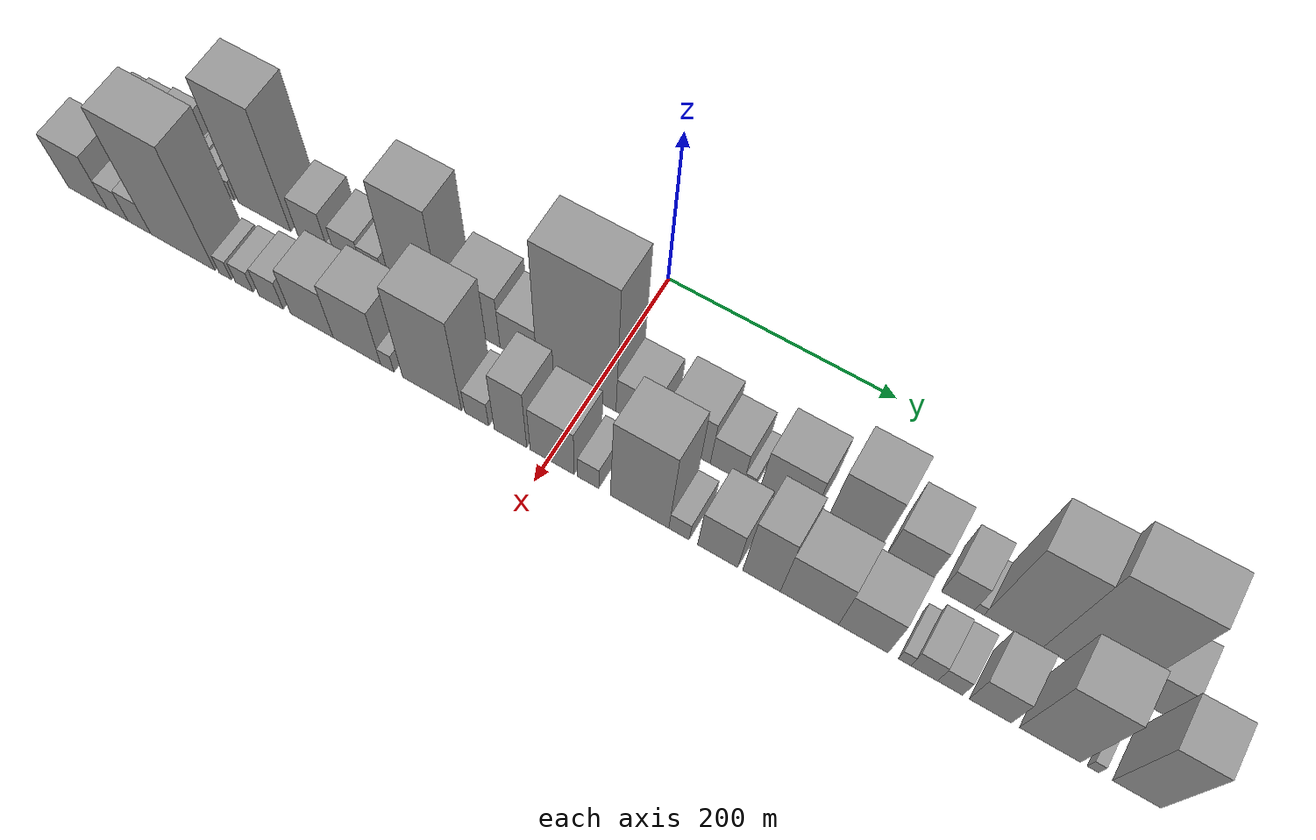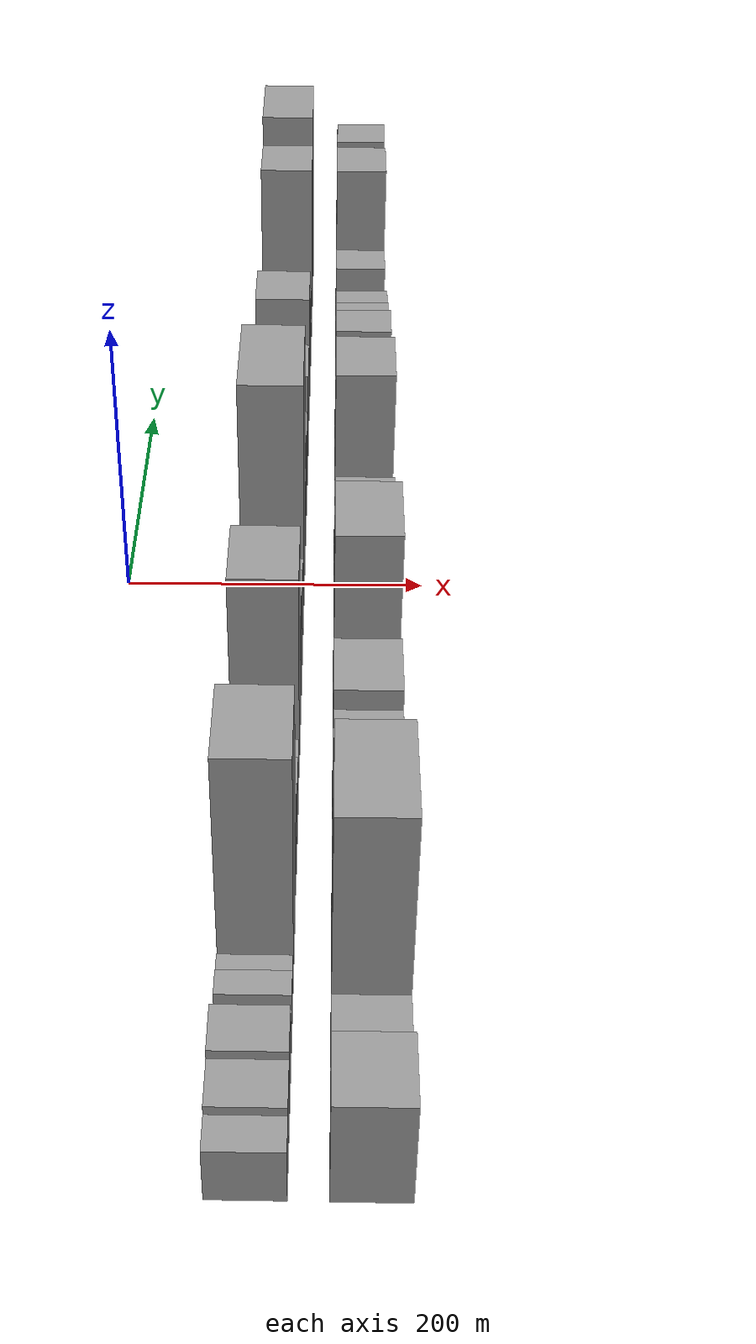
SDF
<sdf version="1.6">
 <world name="default">
  <scene>
   <sky><clouds><speed>12</speed></clouds></sky>
   <ambient>0.4 0.4 0.4 1</ambient>
   <background>0.7 0.7 0.7 1</background>
   <shadows>1</shadows>
  </scene>
  <gravity>0 0 -9.8066</gravity>
  <magnetic_field>6e-06 2.3e-05 -4.2e-05</magnetic_field>
  <physics default="0" name="default_physics" type="ode">
   <ode>
    <solver>
     <type>quick</type>
     <iters>10</iters>
     <sor>1.0</sor>
     <use_dynamic_moi_rescaling>0</use_dynamic_moi_rescaling>
    </solver>
    <constraints>
     <cfm>0</cfm>
     <erp>0.2</erp>
     <contact_max_correcting_vel>100</contact_max_correcting_vel>
     <contact_surface_layer>0.001</contact_surface_layer>
    </constraints>
   </ode>
   <max_step_size>0.004</max_step_size>
   <real_time_factor>1</real_time_factor>
   <real_time_update_rate>250</real_time_update_rate>
  </physics>
  <light name="sun" type="directional">
   <pose>0 0 10 0 0 0</pose>
   <diffuse>0.8 0.8 0.8 1</diffuse>
   <specular>0.2 0.2 0.2 1</specular>
   <attenuation>
    <range>1000</range>
    <constant>0.9</constant>
    <linear>0.01</linear>
    <quadratic>0.001</quadratic>
   </attenuation>
   <direction>-0.5 0.1 -0.9</direction>
  </light>
  <model name="building_1">
   <static>1</static>
   <pose>100.0000 -450.2089 0 0.000000 0.000000 0.000000</pose>
   <link name="link">
    <pose>0 0 19.50 0 0 0</pose>
    <collision name="collision"><geometry><box><size>40.0000 19.5823 39.0000</size></box></geometry></collision>
    <visual name="visual">
     <cast_shadows>0</cast_shadows>
     <geometry><box><size>40.0000 19.5823 39.0000</size></box></geometry>
     <material>
      <script>
       <uri>model://grey_wall/materials/scripts</uri>
       <uri>model://grey_wall/materials/textures</uri>
       <name>vrc/grey_wall</name>
      </script>
     </material>
    </visual>
   </link>
  </model>
  <model name="building_2">
   <static>1</static>
   <pose>100.0000 -427.1291 0 0.000000 0.000000 0.000000</pose>
   <link name="link">
    <pose>0 0 22.50 0 0 0</pose>
    <collision name="collision"><geometry><box><size>40.0000 26.5774 45.0000</size></box></geometry></collision>
    <visual name="visual">
     <cast_shadows>0</cast_shadows>
     <geometry><box><size>40.0000 26.5774 45.0000</size></box></geometry>
     <material>
      <script>
       <uri>model://grey_wall/materials/scripts</uri>
       <uri>model://grey_wall/materials/textures</uri>
       <name>vrc/grey_wall</name>
      </script>
     </material>
    </visual>
   </link>
  </model>
  <model name="building_3">
   <static>1</static>
   <pose>100.0000 -400.4056 0 0.000000 0.000000 0.000000</pose>
   <link name="link">
    <pose>0 0 25.50 0 0 0</pose>
    <collision name="collision"><geometry><box><size>40.0000 26.8695 51.0000</size></box></geometry></collision>
    <visual name="visual">
     <cast_shadows>0</cast_shadows>
     <geometry><box><size>40.0000 26.8695 51.0000</size></box></geometry>
     <material>
      <script>
       <uri>model://grey_wall/materials/scripts</uri>
       <uri>model://grey_wall/materials/textures</uri>
       <name>vrc/grey_wall</name>
      </script>
     </material>
    </visual>
   </link>
  </model>
  <model name="building_4">
   <static>1</static>
   <pose>100.0000 -383.9242 0 0.000000 0.000000 0.000000</pose>
   <link name="link">
    <pose>0 0 7.50 0 0 0</pose>
    <collision name="collision"><geometry><box><size>40.0000 6.0933 15.0000</size></box></geometry></collision>
    <visual name="visual">
     <cast_shadows>0</cast_shadows>
     <geometry><box><size>40.0000 6.0933 15.0000</size></box></geometry>
     <material>
      <script>
       <uri>model://grey_wall/materials/scripts</uri>
       <uri>model://grey_wall/materials/textures</uri>
       <name>vrc/grey_wall</name>
      </script>
     </material>
    </visual>
   </link>
  </model>
  <model name="building_5">
   <static>1</static>
   <pose>100.0000 -376.5319 0 0.000000 0.000000 0.000000</pose>
   <link name="link">
    <pose>0 0 10.50 0 0 0</pose>
    <collision name="collision"><geometry><box><size>40.0000 8.6912 21.0000</size></box></geometry></collision>
    <visual name="visual">
     <cast_shadows>0</cast_shadows>
     <geometry><box><size>40.0000 8.6912 21.0000</size></box></geometry>
     <material>
      <script>
       <uri>model://grey_wall/materials/scripts</uri>
       <uri>model://grey_wall/materials/textures</uri>
       <name>vrc/grey_wall</name>
      </script>
     </material>
    </visual>
   </link>
  </model>
  <model name="building_6">
   <static>1</static>
   <pose>100.0000 -368.5084 0 0.000000 0.000000 0.000000</pose>
   <link name="link">
    <pose>0 0 9.00 0 0 0</pose>
    <collision name="collision"><geometry><box><size>40.0000 7.3557 18.0000</size></box></geometry></collision>
    <visual name="visual">
     <cast_shadows>0</cast_shadows>
     <geometry><box><size>40.0000 7.3557 18.0000</size></box></geometry>
     <material>
      <script>
       <uri>model://grey_wall/materials/scripts</uri>
       <uri>model://grey_wall/materials/textures</uri>
       <name>vrc/grey_wall</name>
      </script>
     </material>
    </visual>
   </link>
  </model>
  <model name="building_7">
   <static>1</static>
   <pose>100.0000 -357.0182 0 0.000000 0.000000 0.000000</pose>
   <link name="link">
    <pose>0 0 15.00 0 0 0</pose>
    <collision name="collision"><geometry><box><size>40.0000 15.6246 30.0000</size></box></geometry></collision>
    <visual name="visual">
     <cast_shadows>0</cast_shadows>
     <geometry><box><size>40.0000 15.6246 30.0000</size></box></geometry>
     <material>
      <script>
       <uri>model://grey_wall/materials/scripts</uri>
       <uri>model://grey_wall/materials/textures</uri>
       <name>vrc/grey_wall</name>
      </script>
     </material>
    </visual>
   </link>
  </model>
  <model name="building_8">
   <static>1</static>
   <pose>100.0000 -343.0800 0 0.000000 0.000000 0.000000</pose>
   <link name="link">
    <pose>0 0 13.50 0 0 0</pose>
    <collision name="collision"><geometry><box><size>40.0000 12.2518 27.0000</size></box></geometry></collision>
    <visual name="visual">
     <cast_shadows>0</cast_shadows>
     <geometry><box><size>40.0000 12.2518 27.0000</size></box></geometry>
     <material>
      <script>
       <uri>model://grey_wall/materials/scripts</uri>
       <uri>model://grey_wall/materials/textures</uri>
       <name>vrc/grey_wall</name>
      </script>
     </material>
    </visual>
   </link>
  </model>
  <model name="building_9">
   <static>1</static>
   <pose>100.0000 -306.8563 0 0.000000 0.000000 0.000000</pose>
   <link name="link">
    <pose>0 0 82.50 0 0 0</pose>
    <collision name="collision"><geometry><box><size>40.0000 52.1956 165.0000</size></box></geometry></collision>
    <visual name="visual">
     <cast_shadows>0</cast_shadows>
     <geometry><box><size>40.0000 52.1956 165.0000</size></box></geometry>
     <material>
      <script>
       <uri>model://grey_wall/materials/scripts</uri>
       <uri>model://grey_wall/materials/textures</uri>
       <name>vrc/grey_wall</name>
      </script>
     </material>
    </visual>
   </link>
  </model>
  <model name="building_10">
   <static>1</static>
   <pose>100.0000 -258.7649 0 0.000000 0.000000 0.000000</pose>
   <link name="link">
    <pose>0 0 28.50 0 0 0</pose>
    <collision name="collision"><geometry><box><size>40.0000 29.9873 57.0000</size></box></geometry></collision>
    <visual name="visual">
     <cast_shadows>0</cast_shadows>
     <geometry><box><size>40.0000 29.9873 57.0000</size></box></geometry>
     <material>
      <script>
       <uri>model://grey_wall/materials/scripts</uri>
       <uri>model://grey_wall/materials/textures</uri>
       <name>vrc/grey_wall</name>
      </script>
     </material>
    </visual>
   </link>
  </model>
  <model name="building_11">
   <static>1</static>
   <pose>100.0000 -240.4747 0 0.000000 0.000000 0.000000</pose>
   <link name="link">
    <pose>0 0 7.50 0 0 0</pose>
    <collision name="collision"><geometry><box><size>40.0000 6.5930 15.0000</size></box></geometry></collision>
    <visual name="visual">
     <cast_shadows>0</cast_shadows>
     <geometry><box><size>40.0000 6.5930 15.0000</size></box></geometry>
     <material>
      <script>
       <uri>model://grey_wall/materials/scripts</uri>
       <uri>model://grey_wall/materials/textures</uri>
       <name>vrc/grey_wall</name>
      </script>
     </material>
    </visual>
   </link>
  </model>
  <model name="building_12">
   <static>1</static>
   <pose>100.0000 -224.1074 0 0.000000 0.000000 0.000000</pose>
   <link name="link">
    <pose>0 0 22.50 0 0 0</pose>
    <collision name="collision"><geometry><box><size>40.0000 26.1418 45.0000</size></box></geometry></collision>
    <visual name="visual">
     <cast_shadows>0</cast_shadows>
     <geometry><box><size>40.0000 26.1418 45.0000</size></box></geometry>
     <material>
      <script>
       <uri>model://grey_wall/materials/scripts</uri>
       <uri>model://grey_wall/materials/textures</uri>
       <name>vrc/grey_wall</name>
      </script>
     </material>
    </visual>
   </link>
  </model>
  <model name="building_13">
   <static>1</static>
   <pose>100.0000 -200.5109 0 0.000000 0.000000 0.000000</pose>
   <link name="link">
    <pose>0 0 19.50 0 0 0</pose>
    <collision name="collision"><geometry><box><size>40.0000 21.0513 39.0000</size></box></geometry></collision>
    <visual name="visual">
     <cast_shadows>0</cast_shadows>
     <geometry><box><size>40.0000 21.0513 39.0000</size></box></geometry>
     <material>
      <script>
       <uri>model://grey_wall/materials/scripts</uri>
       <uri>model://grey_wall/materials/textures</uri>
       <name>vrc/grey_wall</name>
      </script>
     </material>
    </visual>
   </link>
  </model>
  <model name="building_14">
   <static>1</static>
   <pose>100.0000 -158.6587 0 0.000000 0.000000 0.000000</pose>
   <link name="link">
    <pose>0 0 76.50 0 0 0</pose>
    <collision name="collision"><geometry><box><size>40.0000 48.6531 153.0000</size></box></geometry></collision>
    <visual name="visual">
     <cast_shadows>0</cast_shadows>
     <geometry><box><size>40.0000 48.6531 153.0000</size></box></geometry>
     <material>
      <script>
       <uri>model://grey_wall/materials/scripts</uri>
       <uri>model://grey_wall/materials/textures</uri>
       <name>vrc/grey_wall</name>
      </script>
     </material>
    </visual>
   </link>
  </model>
  <model name="building_15">
   <static>1</static>
   <pose>100.0000 -103.3141 0 0.000000 0.000000 0.000000</pose>
   <link name="link">
    <pose>0 0 39.00 0 0 0</pose>
    <collision name="collision"><geometry><box><size>40.0000 44.0360 78.0000</size></box></geometry></collision>
    <visual name="visual">
     <cast_shadows>0</cast_shadows>
     <geometry><box><size>40.0000 44.0360 78.0000</size></box></geometry>
     <material>
      <script>
       <uri>model://grey_wall/materials/scripts</uri>
       <uri>model://grey_wall/materials/textures</uri>
       <name>vrc/grey_wall</name>
      </script>
     </material>
    </visual>
   </link>
  </model>
  <model name="building_16">
   <static>1</static>
   <pose>100.0000 -64.5007 0 0.000000 0.000000 0.000000</pose>
   <link name="link">
    <pose>0 0 30.00 0 0 0</pose>
    <collision name="collision"><geometry><box><size>40.0000 33.5907 60.0000</size></box></geometry></collision>
    <visual name="visual">
     <cast_shadows>0</cast_shadows>
     <geometry><box><size>40.0000 33.5907 60.0000</size></box></geometry>
     <material>
      <script>
       <uri>model://grey_wall/materials/scripts</uri>
       <uri>model://grey_wall/materials/textures</uri>
       <name>vrc/grey_wall</name>
      </script>
     </material>
    </visual>
   </link>
  </model>
  <model name="building_17">
   <static>1</static>
   <pose>100.0000 -12.4729 0 0.000000 0.000000 0.000000</pose>
   <link name="link">
    <pose>0 0 96.00 0 0 0</pose>
    <collision name="collision"><geometry><box><size>40.0000 70.4649 192.0000</size></box></geometry></collision>
    <visual name="visual">
     <cast_shadows>0</cast_shadows>
     <geometry><box><size>40.0000 70.4649 192.0000</size></box></geometry>
     <material>
      <script>
       <uri>model://grey_wall/materials/scripts</uri>
       <uri>model://grey_wall/materials/textures</uri>
       <name>vrc/grey_wall</name>
      </script>
     </material>
    </visual>
   </link>
  </model>
  <model name="building_18">
   <static>1</static>
   <pose>100.0000 39.6269 0 0.000000 0.000000 0.000000</pose>
   <link name="link">
    <pose>0 0 28.50 0 0 0</pose>
    <collision name="collision"><geometry><box><size>40.0000 33.7347 57.0000</size></box></geometry></collision>
    <visual name="visual">
     <cast_shadows>0</cast_shadows>
     <geometry><box><size>40.0000 33.7347 57.0000</size></box></geometry>
     <material>
      <script>
       <uri>model://grey_wall/materials/scripts</uri>
       <uri>model://grey_wall/materials/textures</uri>
       <name>vrc/grey_wall</name>
      </script>
     </material>
    </visual>
   </link>
  </model>
  <model name="building_19">
   <static>1</static>
   <pose>100.0000 84.9731 0 0.000000 0.000000 0.000000</pose>
   <link name="link">
    <pose>0 0 36.00 0 0 0</pose>
    <collision name="collision"><geometry><box><size>40.0000 38.9576 72.0000</size></box></geometry></collision>
    <visual name="visual">
     <cast_shadows>0</cast_shadows>
     <geometry><box><size>40.0000 38.9576 72.0000</size></box></geometry>
     <material>
      <script>
       <uri>model://grey_wall/materials/scripts</uri>
       <uri>model://grey_wall/materials/textures</uri>
       <name>vrc/grey_wall</name>
      </script>
     </material>
    </visual>
   </link>
  </model>
  <model name="building_20">
   <static>1</static>
   <pose>100.0000 118.7665 0 0.000000 0.000000 0.000000</pose>
   <link name="link">
    <pose>0 0 25.50 0 0 0</pose>
    <collision name="collision"><geometry><box><size>40.0000 28.6294 51.0000</size></box></geometry></collision>
    <visual name="visual">
     <cast_shadows>0</cast_shadows>
     <geometry><box><size>40.0000 28.6294 51.0000</size></box></geometry>
     <material>
      <script>
       <uri>model://grey_wall/materials/scripts</uri>
       <uri>model://grey_wall/materials/textures</uri>
       <name>vrc/grey_wall</name>
      </script>
     </material>
    </visual>
   </link>
  </model>
  <model name="building_21">
   <static>1</static>
   <pose>100.0000 137.5628 0 0.000000 0.000000 0.000000</pose>
   <link name="link">
    <pose>0 0 9.00 0 0 0</pose>
    <collision name="collision"><geometry><box><size>40.0000 8.9632 18.0000</size></box></geometry></collision>
    <visual name="visual">
     <cast_shadows>0</cast_shadows>
     <geometry><box><size>40.0000 8.9632 18.0000</size></box></geometry>
     <material>
      <script>
       <uri>model://grey_wall/materials/scripts</uri>
       <uri>model://grey_wall/materials/textures</uri>
       <name>vrc/grey_wall</name>
      </script>
     </material>
    </visual>
   </link>
  </model>
  <model name="building_22">
   <static>1</static>
   <pose>100.0000 167.8590 0 0.000000 0.000000 0.000000</pose>
   <link name="link">
    <pose>0 0 37.50 0 0 0</pose>
    <collision name="collision"><geometry><box><size>40.0000 43.6292 75.0000</size></box></geometry></collision>
    <visual name="visual">
     <cast_shadows>0</cast_shadows>
     <geometry><box><size>40.0000 43.6292 75.0000</size></box></geometry>
     <material>
      <script>
       <uri>model://grey_wall/materials/scripts</uri>
       <uri>model://grey_wall/materials/textures</uri>
       <name>vrc/grey_wall</name>
      </script>
     </material>
    </visual>
   </link>
  </model>
  <model name="building_23">
   <static>1</static>
   <pose>100.0000 221.0656 0 0.000000 0.000000 0.000000</pose>
   <link name="link">
    <pose>0 0 54.00 0 0 0</pose>
    <collision name="collision"><geometry><box><size>40.0000 42.7839 108.0000</size></box></geometry></collision>
    <visual name="visual">
     <cast_shadows>0</cast_shadows>
     <geometry><box><size>40.0000 42.7839 108.0000</size></box></geometry>
     <material>
      <script>
       <uri>model://grey_wall/materials/scripts</uri>
       <uri>model://grey_wall/materials/textures</uri>
       <name>vrc/grey_wall</name>
      </script>
     </material>
    </visual>
   </link>
  </model>
  <model name="building_24">
   <static>1</static>
   <pose>100.0000 266.4537 0 0.000000 0.000000 0.000000</pose>
   <link name="link">
    <pose>0 0 34.50 0 0 0</pose>
    <collision name="collision"><geometry><box><size>40.0000 35.9923 69.0000</size></box></geometry></collision>
    <visual name="visual">
     <cast_shadows>0</cast_shadows>
     <geometry><box><size>40.0000 35.9923 69.0000</size></box></geometry>
     <material>
      <script>
       <uri>model://grey_wall/materials/scripts</uri>
       <uri>model://grey_wall/materials/textures</uri>
       <name>vrc/grey_wall</name>
      </script>
     </material>
    </visual>
   </link>
  </model>
  <model name="building_25">
   <static>1</static>
   <pose>100.0000 307.6019 0 0.000000 0.000000 0.000000</pose>
   <link name="link">
    <pose>0 0 24.00 0 0 0</pose>
    <collision name="collision"><geometry><box><size>40.0000 26.3041 48.0000</size></box></geometry></collision>
    <visual name="visual">
     <cast_shadows>0</cast_shadows>
     <geometry><box><size>40.0000 26.3041 48.0000</size></box></geometry>
     <material>
      <script>
       <uri>model://grey_wall/materials/scripts</uri>
       <uri>model://grey_wall/materials/textures</uri>
       <name>vrc/grey_wall</name>
      </script>
     </material>
    </visual>
   </link>
  </model>
  <model name="building_26">
   <static>1</static>
   <pose>100.0000 324.3262 0 0.000000 0.000000 0.000000</pose>
   <link name="link">
    <pose>0 0 7.50 0 0 0</pose>
    <collision name="collision"><geometry><box><size>40.0000 7.1446 15.0000</size></box></geometry></collision>
    <visual name="visual">
     <cast_shadows>0</cast_shadows>
     <geometry><box><size>40.0000 7.1446 15.0000</size></box></geometry>
     <material>
      <script>
       <uri>model://grey_wall/materials/scripts</uri>
       <uri>model://grey_wall/materials/textures</uri>
       <name>vrc/grey_wall</name>
      </script>
     </material>
    </visual>
   </link>
  </model>
  <model name="building_27">
   <static>1</static>
   <pose>100.0000 350.5982 0 0.000000 0.000000 0.000000</pose>
   <link name="link">
    <pose>0 0 75.00 0 0 0</pose>
    <collision name="collision"><geometry><box><size>40.0000 45.3994 150.0000</size></box></geometry></collision>
    <visual name="visual">
     <cast_shadows>0</cast_shadows>
     <geometry><box><size>40.0000 45.3994 150.0000</size></box></geometry>
     <material>
      <script>
       <uri>model://grey_wall/materials/scripts</uri>
       <uri>model://grey_wall/materials/textures</uri>
       <name>vrc/grey_wall</name>
      </script>
     </material>
    </visual>
   </link>
  </model>
  <model name="building_28">
   <static>1</static>
   <pose>100.0000 404.5768 0 0.000000 0.000000 0.000000</pose>
   <link name="link">
    <pose>0 0 87.00 0 0 0</pose>
    <collision name="collision"><geometry><box><size>40.0000 62.5577 174.0000</size></box></geometry></collision>
    <visual name="visual">
     <cast_shadows>0</cast_shadows>
     <geometry><box><size>40.0000 62.5577 174.0000</size></box></geometry>
     <material>
      <script>
       <uri>model://grey_wall/materials/scripts</uri>
       <uri>model://grey_wall/materials/textures</uri>
       <name>vrc/grey_wall</name>
      </script>
     </material>
    </visual>
   </link>
  </model>
  <model name="building_29">
   <static>1</static>
   <pose>100.0000 451.2607 0 0.000000 0.000000 0.000000</pose>
   <link name="link">
    <pose>0 0 30.00 0 0 0</pose>
    <collision name="collision"><geometry><box><size>40.0000 30.8100 60.0000</size></box></geometry></collision>
    <visual name="visual">
     <cast_shadows>0</cast_shadows>
     <geometry><box><size>40.0000 30.8100 60.0000</size></box></geometry>
     <material>
      <script>
       <uri>model://grey_wall/materials/scripts</uri>
       <uri>model://grey_wall/materials/textures</uri>
       <name>vrc/grey_wall</name>
      </script>
     </material>
    </visual>
   </link>
  </model>
  <model name="building_30">
   <static>1</static>
   <pose>160.0000 -439.6438 0 0.000000 0.000000 0.000000</pose>
   <link name="link">
    <pose>0 0 37.50 0 0 0</pose>
    <collision name="collision"><geometry><box><size>40.0000 40.7124 75.0000</size></box></geometry></collision>
    <visual name="visual">
     <cast_shadows>0</cast_shadows>
     <geometry><box><size>40.0000 40.7124 75.0000</size></box></geometry>
     <material>
      <script>
       <uri>model://grey_wall/materials/scripts</uri>
       <uri>model://grey_wall/materials/textures</uri>
       <name>vrc/grey_wall</name>
      </script>
     </material>
    </visual>
   </link>
  </model>
  <model name="building_31">
   <static>1</static>
   <pose>160.0000 -408.7538 0 0.000000 0.000000 0.000000</pose>
   <link name="link">
    <pose>0 0 21.00 0 0 0</pose>
    <collision name="collision"><geometry><box><size>40.0000 21.0678 42.0000</size></box></geometry></collision>
    <visual name="visual">
     <cast_shadows>0</cast_shadows>
     <geometry><box><size>40.0000 21.0678 42.0000</size></box></geometry>
     <material>
      <script>
       <uri>model://grey_wall/materials/scripts</uri>
       <uri>model://grey_wall/materials/textures</uri>
       <name>vrc/grey_wall</name>
      </script>
     </material>
    </visual>
   </link>
  </model>
  <model name="building_32">
   <static>1</static>
   <pose>160.0000 -386.7330 0 0.000000 0.000000 0.000000</pose>
   <link name="link">
    <pose>0 0 22.50 0 0 0</pose>
    <collision name="collision"><geometry><box><size>40.0000 22.9737 45.0000</size></box></geometry></collision>
    <visual name="visual">
     <cast_shadows>0</cast_shadows>
     <geometry><box><size>40.0000 22.9737 45.0000</size></box></geometry>
     <material>
      <script>
       <uri>model://grey_wall/materials/scripts</uri>
       <uri>model://grey_wall/materials/textures</uri>
       <name>vrc/grey_wall</name>
      </script>
     </material>
    </visual>
   </link>
  </model>
  <model name="building_33">
   <static>1</static>
   <pose>160.0000 -343.1132 0 0.000000 0.000000 0.000000</pose>
   <link name="link">
    <pose>0 0 85.50 0 0 0</pose>
    <collision name="collision"><geometry><box><size>40.0000 64.2659 171.0000</size></box></geometry></collision>
    <visual name="visual">
     <cast_shadows>0</cast_shadows>
     <geometry><box><size>40.0000 64.2659 171.0000</size></box></geometry>
     <material>
      <script>
       <uri>model://grey_wall/materials/scripts</uri>
       <uri>model://grey_wall/materials/textures</uri>
       <name>vrc/grey_wall</name>
      </script>
     </material>
    </visual>
   </link>
  </model>
  <model name="building_34">
   <static>1</static>
   <pose>160.0000 -300.8660 0 0.000000 0.000000 0.000000</pose>
   <link name="link">
    <pose>0 0 13.50 0 0 0</pose>
    <collision name="collision"><geometry><box><size>40.0000 12.2286 27.0000</size></box></geometry></collision>
    <visual name="visual">
     <cast_shadows>0</cast_shadows>
     <geometry><box><size>40.0000 12.2286 27.0000</size></box></geometry>
     <material>
      <script>
       <uri>model://grey_wall/materials/scripts</uri>
       <uri>model://grey_wall/materials/textures</uri>
       <name>vrc/grey_wall</name>
      </script>
     </material>
    </visual>
   </link>
  </model>
  <model name="building_35">
   <static>1</static>
   <pose>160.0000 -282.1672 0 0.000000 0.000000 0.000000</pose>
   <link name="link">
    <pose>0 0 15.00 0 0 0</pose>
    <collision name="collision"><geometry><box><size>40.0000 17.1689 30.0000</size></box></geometry></collision>
    <visual name="visual">
     <cast_shadows>0</cast_shadows>
     <geometry><box><size>40.0000 17.1689 30.0000</size></box></geometry>
     <material>
      <script>
       <uri>model://grey_wall/materials/scripts</uri>
       <uri>model://grey_wall/materials/textures</uri>
       <name>vrc/grey_wall</name>
      </script>
     </material>
    </visual>
   </link>
  </model>
  <model name="building_36">
   <static>1</static>
   <pose>160.0000 -255.9202 0 0.000000 0.000000 0.000000</pose>
   <link name="link">
    <pose>0 0 21.00 0 0 0</pose>
    <collision name="collision"><geometry><box><size>40.0000 23.3251 42.0000</size></box></geometry></collision>
    <visual name="visual">
     <cast_shadows>0</cast_shadows>
     <geometry><box><size>40.0000 23.3251 42.0000</size></box></geometry>
     <material>
      <script>
       <uri>model://grey_wall/materials/scripts</uri>
       <uri>model://grey_wall/materials/textures</uri>
       <name>vrc/grey_wall</name>
      </script>
     </material>
    </visual>
   </link>
  </model>
  <model name="building_37">
   <static>1</static>
   <pose>160.0000 -216.8334 0 0.000000 0.000000 0.000000</pose>
   <link name="link">
    <pose>0 0 34.50 0 0 0</pose>
    <collision name="collision"><geometry><box><size>40.0000 40.8485 69.0000</size></box></geometry></collision>
    <visual name="visual">
     <cast_shadows>0</cast_shadows>
     <geometry><box><size>40.0000 40.8485 69.0000</size></box></geometry>
     <material>
      <script>
       <uri>model://grey_wall/materials/scripts</uri>
       <uri>model://grey_wall/materials/textures</uri>
       <name>vrc/grey_wall</name>
      </script>
     </material>
    </visual>
   </link>
  </model>
  <model name="building_38">
   <static>1</static>
   <pose>160.0000 -174.1545 0 0.000000 0.000000 0.000000</pose>
   <link name="link">
    <pose>0 0 42.00 0 0 0</pose>
    <collision name="collision"><geometry><box><size>40.0000 44.5092 84.0000</size></box></geometry></collision>
    <visual name="visual">
     <cast_shadows>0</cast_shadows>
     <geometry><box><size>40.0000 44.5092 84.0000</size></box></geometry>
     <material>
      <script>
       <uri>model://grey_wall/materials/scripts</uri>
       <uri>model://grey_wall/materials/textures</uri>
       <name>vrc/grey_wall</name>
      </script>
     </material>
    </visual>
   </link>
  </model>
  <model name="building_39">
   <static>1</static>
   <pose>160.0000 -145.7039 0 0.000000 0.000000 0.000000</pose>
   <link name="link">
    <pose>0 0 13.50 0 0 0</pose>
    <collision name="collision"><geometry><box><size>40.0000 12.3920 27.0000</size></box></geometry></collision>
    <visual name="visual">
     <cast_shadows>0</cast_shadows>
     <geometry><box><size>40.0000 12.3920 27.0000</size></box></geometry>
     <material>
      <script>
       <uri>model://grey_wall/materials/scripts</uri>
       <uri>model://grey_wall/materials/textures</uri>
       <name>vrc/grey_wall</name>
      </script>
     </material>
    </visual>
   </link>
  </model>
  <model name="building_40">
   <static>1</static>
   <pose>160.0000 -104.5257 0 0.000000 0.000000 0.000000</pose>
   <link name="link">
    <pose>0 0 72.00 0 0 0</pose>
    <collision name="collision"><geometry><box><size>40.0000 53.9645 144.0000</size></box></geometry></collision>
    <visual name="visual">
     <cast_shadows>0</cast_shadows>
     <geometry><box><size>40.0000 53.9645 144.0000</size></box></geometry>
     <material>
      <script>
       <uri>model://grey_wall/materials/scripts</uri>
       <uri>model://grey_wall/materials/textures</uri>
       <name>vrc/grey_wall</name>
      </script>
     </material>
    </visual>
   </link>
  </model>
  <model name="building_41">
   <static>1</static>
   <pose>160.0000 -63.8066 0 0.000000 0.000000 0.000000</pose>
   <link name="link">
    <pose>0 0 19.50 0 0 0</pose>
    <collision name="collision"><geometry><box><size>40.0000 21.4738 39.0000</size></box></geometry></collision>
    <visual name="visual">
     <cast_shadows>0</cast_shadows>
     <geometry><box><size>40.0000 21.4738 39.0000</size></box></geometry>
     <material>
      <script>
       <uri>model://grey_wall/materials/scripts</uri>
       <uri>model://grey_wall/materials/textures</uri>
       <name>vrc/grey_wall</name>
      </script>
     </material>
    </visual>
   </link>
  </model>
  <model name="building_42">
   <static>1</static>
   <pose>160.0000 -33.6323 0 0.000000 0.000000 0.000000</pose>
   <link name="link">
    <pose>0 0 48.00 0 0 0</pose>
    <collision name="collision"><geometry><box><size>40.0000 28.8748 96.0000</size></box></geometry></collision>
    <visual name="visual">
     <cast_shadows>0</cast_shadows>
     <geometry><box><size>40.0000 28.8748 96.0000</size></box></geometry>
     <material>
      <script>
       <uri>model://grey_wall/materials/scripts</uri>
       <uri>model://grey_wall/materials/textures</uri>
       <name>vrc/grey_wall</name>
      </script>
     </material>
    </visual>
   </link>
  </model>
  <model name="building_43">
   <static>1</static>
   <pose>160.0000 3.0776 0 0.000000 0.000000 0.000000</pose>
   <link name="link">
    <pose>0 0 37.50 0 0 0</pose>
    <collision name="collision"><geometry><box><size>40.0000 38.5448 75.0000</size></box></geometry></collision>
    <visual name="visual">
     <cast_shadows>0</cast_shadows>
     <geometry><box><size>40.0000 38.5448 75.0000</size></box></geometry>
     <material>
      <script>
       <uri>model://grey_wall/materials/scripts</uri>
       <uri>model://grey_wall/materials/textures</uri>
       <name>vrc/grey_wall</name>
      </script>
     </material>
    </visual>
   </link>
  </model>
  <model name="building_44">
   <static>1</static>
   <pose>160.0000 34.5291 0 0.000000 0.000000 0.000000</pose>
   <link name="link">
    <pose>0 0 18.00 0 0 0</pose>
    <collision name="collision"><geometry><box><size>40.0000 18.3583 36.0000</size></box></geometry></collision>
    <visual name="visual">
     <cast_shadows>0</cast_shadows>
     <geometry><box><size>40.0000 18.3583 36.0000</size></box></geometry>
     <material>
      <script>
       <uri>model://grey_wall/materials/scripts</uri>
       <uri>model://grey_wall/materials/textures</uri>
       <name>vrc/grey_wall</name>
      </script>
     </material>
    </visual>
   </link>
  </model>
  <model name="building_45">
   <static>1</static>
   <pose>160.0000 78.5688 0 0.000000 0.000000 0.000000</pose>
   <link name="link">
    <pose>0 0 67.50 0 0 0</pose>
    <collision name="collision"><geometry><box><size>40.0000 49.7209 135.0000</size></box></geometry></collision>
    <visual name="visual">
     <cast_shadows>0</cast_shadows>
     <geometry><box><size>40.0000 49.7209 135.0000</size></box></geometry>
     <material>
      <script>
       <uri>model://grey_wall/materials/scripts</uri>
       <uri>model://grey_wall/materials/textures</uri>
       <name>vrc/grey_wall</name>
      </script>
     </material>
    </visual>
   </link>
  </model>
  <model name="building_46">
   <static>1</static>
   <pose>160.0000 111.9978 0 0.000000 0.000000 0.000000</pose>
   <link name="link">
    <pose>0 0 15.00 0 0 0</pose>
    <collision name="collision"><geometry><box><size>40.0000 17.1372 30.0000</size></box></geometry></collision>
    <visual name="visual">
     <cast_shadows>0</cast_shadows>
     <geometry><box><size>40.0000 17.1372 30.0000</size></box></geometry>
     <material>
      <script>
       <uri>model://grey_wall/materials/scripts</uri>
       <uri>model://grey_wall/materials/textures</uri>
       <name>vrc/grey_wall</name>
      </script>
     </material>
    </visual>
   </link>
  </model>
  <model name="building_47">
   <static>1</static>
   <pose>160.0000 144.2321 0 0.000000 0.000000 0.000000</pose>
   <link name="link">
    <pose>0 0 33.00 0 0 0</pose>
    <collision name="collision"><geometry><box><size>40.0000 33.3315 66.0000</size></box></geometry></collision>
    <visual name="visual">
     <cast_shadows>0</cast_shadows>
     <geometry><box><size>40.0000 33.3315 66.0000</size></box></geometry>
     <material>
      <script>
       <uri>model://grey_wall/materials/scripts</uri>
       <uri>model://grey_wall/materials/textures</uri>
       <name>vrc/grey_wall</name>
      </script>
     </material>
    </visual>
   </link>
  </model>
  <model name="building_48">
   <static>1</static>
   <pose>160.0000 180.2199 0 0.000000 0.000000 0.000000</pose>
   <link name="link">
    <pose>0 0 51.00 0 0 0</pose>
    <collision name="collision"><geometry><box><size>40.0000 30.6441 102.0000</size></box></geometry></collision>
    <visual name="visual">
     <cast_shadows>0</cast_shadows>
     <geometry><box><size>40.0000 30.6441 102.0000</size></box></geometry>
     <material>
      <script>
       <uri>model://grey_wall/materials/scripts</uri>
       <uri>model://grey_wall/materials/textures</uri>
       <name>vrc/grey_wall</name>
      </script>
     </material>
    </visual>
   </link>
  </model>
  <model name="building_49">
   <static>1</static>
   <pose>160.0000 219.0074 0 0.000000 0.000000 0.000000</pose>
   <link name="link">
    <pose>0 0 40.50 0 0 0</pose>
    <collision name="collision"><geometry><box><size>40.0000 46.9309 81.0000</size></box></geometry></collision>
    <visual name="visual">
     <cast_shadows>0</cast_shadows>
     <geometry><box><size>40.0000 46.9309 81.0000</size></box></geometry>
     <material>
      <script>
       <uri>model://grey_wall/materials/scripts</uri>
       <uri>model://grey_wall/materials/textures</uri>
       <name>vrc/grey_wall</name>
      </script>
     </material>
    </visual>
   </link>
  </model>
  <model name="building_50">
   <static>1</static>
   <pose>160.0000 262.0633 0 0.000000 0.000000 0.000000</pose>
   <link name="link">
    <pose>0 0 34.50 0 0 0</pose>
    <collision name="collision"><geometry><box><size>40.0000 39.1810 69.0000</size></box></geometry></collision>
    <visual name="visual">
     <cast_shadows>0</cast_shadows>
     <geometry><box><size>40.0000 39.1810 69.0000</size></box></geometry>
     <material>
      <script>
       <uri>model://grey_wall/materials/scripts</uri>
       <uri>model://grey_wall/materials/textures</uri>
       <name>vrc/grey_wall</name>
      </script>
     </material>
    </visual>
   </link>
  </model>
  <model name="building_51">
   <static>1</static>
   <pose>160.0000 294.5835 0 0.000000 0.000000 0.000000</pose>
   <link name="link">
    <pose>0 0 10.50 0 0 0</pose>
    <collision name="collision"><geometry><box><size>40.0000 9.8592 21.0000</size></box></geometry></collision>
    <visual name="visual">
     <cast_shadows>0</cast_shadows>
     <geometry><box><size>40.0000 9.8592 21.0000</size></box></geometry>
     <material>
      <script>
       <uri>model://grey_wall/materials/scripts</uri>
       <uri>model://grey_wall/materials/textures</uri>
       <name>vrc/grey_wall</name>
      </script>
     </material>
    </visual>
   </link>
  </model>
  <model name="building_52">
   <static>1</static>
   <pose>160.0000 309.8899 0 0.000000 0.000000 0.000000</pose>
   <link name="link">
    <pose>0 0 18.00 0 0 0</pose>
    <collision name="collision"><geometry><box><size>40.0000 20.7536 36.0000</size></box></geometry></collision>
    <visual name="visual">
     <cast_shadows>0</cast_shadows>
     <geometry><box><size>40.0000 20.7536 36.0000</size></box></geometry>
     <material>
      <script>
       <uri>model://grey_wall/materials/scripts</uri>
       <uri>model://grey_wall/materials/textures</uri>
       <name>vrc/grey_wall</name>
      </script>
     </material>
    </visual>
   </link>
  </model>
  <model name="building_53">
   <static>1</static>
   <pose>160.0000 329.7761 0 0.000000 0.000000 0.000000</pose>
   <link name="link">
    <pose>0 0 16.50 0 0 0</pose>
    <collision name="collision"><geometry><box><size>40.0000 19.0188 33.0000</size></box></geometry></collision>
    <visual name="visual">
     <cast_shadows>0</cast_shadows>
     <geometry><box><size>40.0000 19.0188 33.0000</size></box></geometry>
     <material>
      <script>
       <uri>model://grey_wall/materials/scripts</uri>
       <uri>model://grey_wall/materials/textures</uri>
       <name>vrc/grey_wall</name>
      </script>
     </material>
    </visual>
   </link>
  </model>
  <model name="building_54">
   <static>1</static>
   <pose>160.0000 360.2545 0 0.000000 0.000000 0.000000</pose>
   <link name="link">
    <pose>0 0 27.00 0 0 0</pose>
    <collision name="collision"><geometry><box><size>40.0000 31.9380 54.0000</size></box></geometry></collision>
    <visual name="visual">
     <cast_shadows>0</cast_shadows>
     <geometry><box><size>40.0000 31.9380 54.0000</size></box></geometry>
     <material>
      <script>
       <uri>model://grey_wall/materials/scripts</uri>
       <uri>model://grey_wall/materials/textures</uri>
       <name>vrc/grey_wall</name>
      </script>
     </material>
    </visual>
   </link>
  </model>
  <model name="building_55">
   <static>1</static>
   <pose>160.0000 404.9204 0 0.000000 0.000000 0.000000</pose>
   <link name="link">
    <pose>0 0 61.50 0 0 0</pose>
    <collision name="collision"><geometry><box><size>40.0000 45.3938 123.0000</size></box></geometry></collision>
    <visual name="visual">
     <cast_shadows>0</cast_shadows>
     <geometry><box><size>40.0000 45.3938 123.0000</size></box></geometry>
     <material>
      <script>
       <uri>model://grey_wall/materials/scripts</uri>
       <uri>model://grey_wall/materials/textures</uri>
       <name>vrc/grey_wall</name>
      </script>
     </material>
    </visual>
   </link>
  </model>
  <model name="building_56">
   <static>1</static>
   <pose>160.0000 436.8313 0 0.000000 0.000000 0.000000</pose>
   <link name="link">
    <pose>0 0 9.00 0 0 0</pose>
    <collision name="collision"><geometry><box><size>40.0000 8.4280 18.0000</size></box></geometry></collision>
    <visual name="visual">
     <cast_shadows>0</cast_shadows>
     <geometry><box><size>40.0000 8.4280 18.0000</size></box></geometry>
     <material>
      <script>
       <uri>model://grey_wall/materials/scripts</uri>
       <uri>model://grey_wall/materials/textures</uri>
       <name>vrc/grey_wall</name>
      </script>
     </material>
    </visual>
   </link>
  </model>
  <model name="building_57">
   <static>1</static>
   <pose>160.0000 468.6674 0 0.000000 0.000000 0.000000</pose>
   <link name="link">
    <pose>0 0 58.50 0 0 0</pose>
    <collision name="collision"><geometry><box><size>40.0000 35.2443 117.0000</size></box></geometry></collision>
    <visual name="visual">
     <cast_shadows>0</cast_shadows>
     <geometry><box><size>40.0000 35.2443 117.0000</size></box></geometry>
     <material>
      <script>
       <uri>model://grey_wall/materials/scripts</uri>
       <uri>model://grey_wall/materials/textures</uri>
       <name>vrc/grey_wall</name>
      </script>
     </material>
    </visual>
   </link>
  </model>
 </world>
</sdf>
